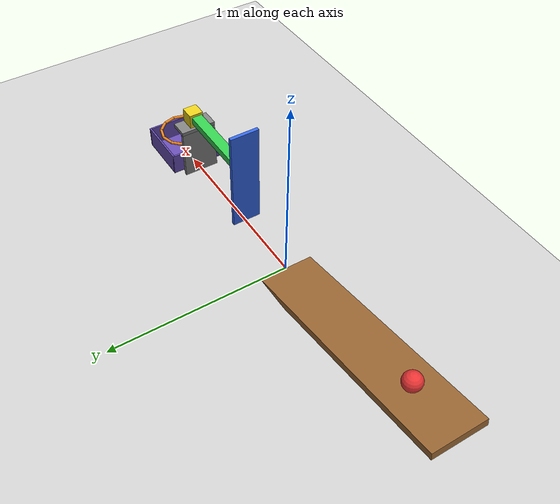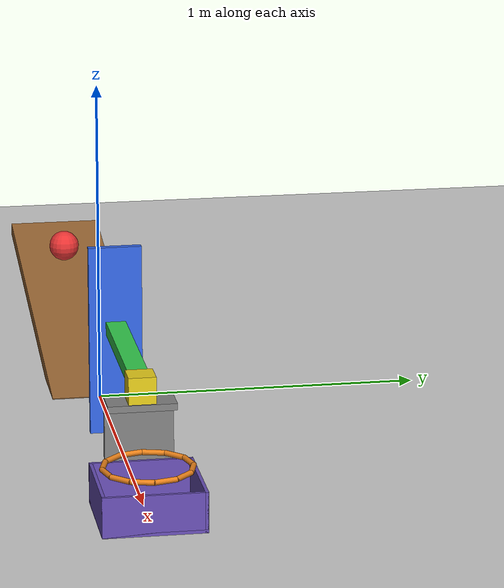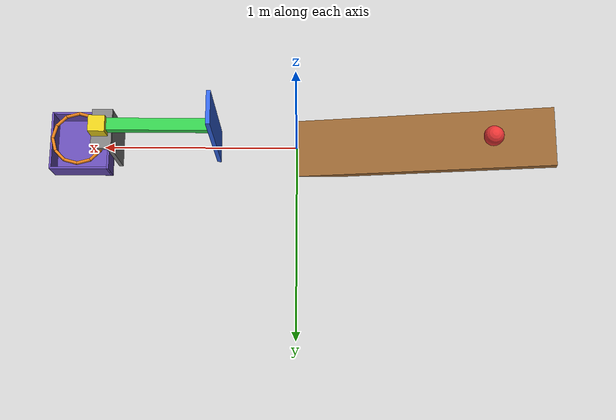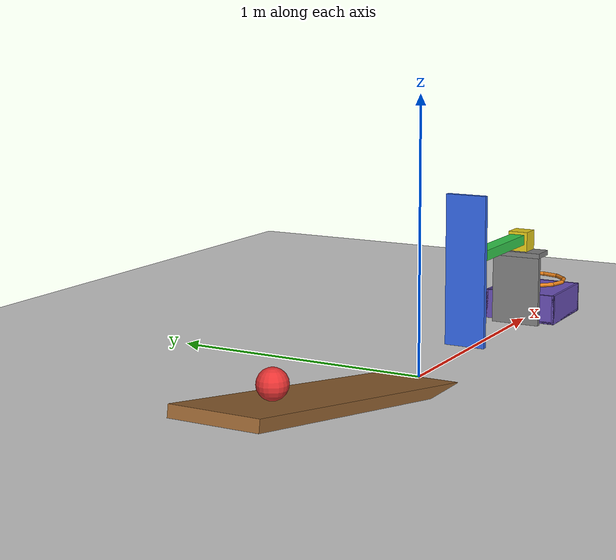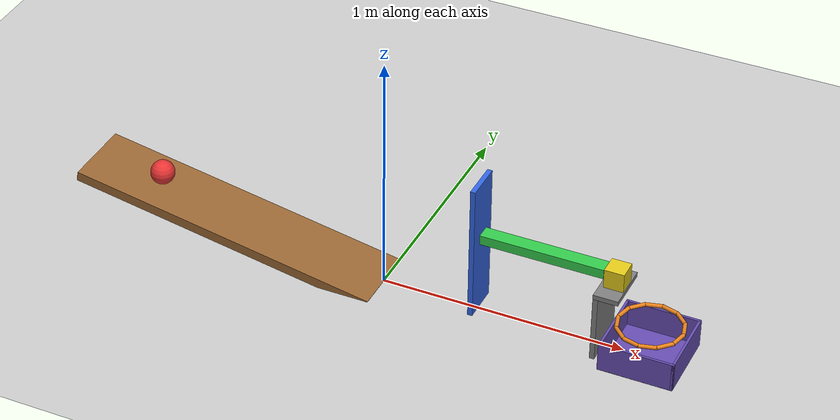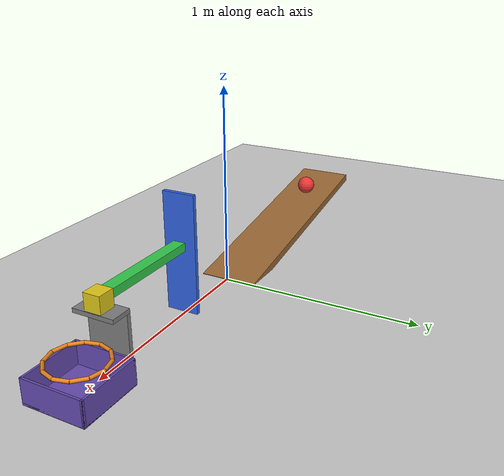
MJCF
<mujoco model="ramp_paddle_slider_block">
  <compiler angle="degree"/>
  <option timestep="0.002" gravity="0 0 -9.81"/>

  <worldbody>
    <light name="sun" pos="0.5 -1 3" dir="0 0.3 -1" diffuse="0.9 0.9 0.9"/>
    <geom name="floor" type="plane" pos="0 0 0" size="5 5 0.1" rgba="0.8 0.8 0.8 1"/>

    <!-- trigger ball: starts 1 m along the 10 degree ramp, at rest -->
    <body name="ball" pos="-0.9760 0 0.2239">
      <freejoint name="ball_free"/>
      <geom name="ball_geom" type="sphere" size="0.05" mass="0.5" rgba="0.9 0.2 0.2 1"/>
    </body>

    <!-- ball ramp: 1.3 m long, 10 degrees, lower edge meets floor at x=0 -->
    <body name="ramp" pos="0 0 0">
      <geom name="ramp_surface" type="box" pos="-0.6436 0 0.0932" euler="0 10 0" size="0.65 0.15 0.02" rgba="0.6 0.4 0.2 1"/>
    </body>

    <!-- swinging paddle: pivot at top, hangs to z=0.02 -->
    <body name="paddle" pos="0.4 0 0.6">
      <joint name="paddle_hinge" type="hinge" axis="0 1 0" pos="0 0 0" damping="0.001"/>
      <geom name="paddle_geom" type="box" pos="0 0 -0.29" size="0.01 0.08 0.29" mass="0.4" rgba="0.2 0.4 0.9 1"/>
    </body>

    <!-- horizontal slider at z=0.35: rear face 2 mm in front of paddle, front face 5 mm behind block -->
    <body name="slider" pos="0.662 0 0.35">
      <joint name="slider_slide" type="slide" axis="1 0 0" range="0 0.10" limited="true"/>
      <geom name="slider_geom" type="box" size="0.25 0.03 0.02" mass="0.3" rgba="0.2 0.8 0.3 1"/>
    </body>

    <!-- payload block on the ledge -->
    <body name="block" pos="0.957 0 0.3405">
      <freejoint name="block_free"/>
      <geom name="block_geom" type="box" size="0.04 0.04 0.04" mass="0.15" friction="0.05 0.005 0.0001" rgba="0.9 0.8 0.1 1"/>
    </body>

    <!-- ledge: low-friction shelf (top z=0.30, edge at x=1.00) on a rear post -->
    <body name="ledge" pos="0 0 0">
      <geom name="ledge_shelf" type="box" pos="0.95 0 0.29" size="0.05 0.1 0.01" friction="0.05 0.005 0.0001" rgba="0.5 0.5 0.5 1"/>
      <geom name="ledge_post" type="box" pos="0.91 0 0.14" size="0.01 0.1 0.14" rgba="0.5 0.5 0.5 1"/>
    </body>

    <!-- horizontal hoop: ring radius 0.13 at z=0.15 centred on x=1.10 -->
    <body name="hoop" pos="0 0 0">
      <geom name="hoop_s0" type="capsule" fromto="1.2300 0.0000 0.15 1.2126 0.0650 0.15" size="0.008" rgba="0.9 0.5 0.1 1"/>
      <geom name="hoop_s1" type="capsule" fromto="1.2126 0.0650 0.15 1.1650 0.1126 0.15" size="0.008" rgba="0.9 0.5 0.1 1"/>
      <geom name="hoop_s2" type="capsule" fromto="1.1650 0.1126 0.15 1.1000 0.1300 0.15" size="0.008" rgba="0.9 0.5 0.1 1"/>
      <geom name="hoop_s3" type="capsule" fromto="1.1000 0.1300 0.15 1.0350 0.1126 0.15" size="0.008" rgba="0.9 0.5 0.1 1"/>
      <geom name="hoop_s4" type="capsule" fromto="1.0350 0.1126 0.15 0.9874 0.0650 0.15" size="0.008" rgba="0.9 0.5 0.1 1"/>
      <geom name="hoop_s5" type="capsule" fromto="0.9874 0.0650 0.15 0.9700 0.0000 0.15" size="0.008" rgba="0.9 0.5 0.1 1"/>
      <geom name="hoop_s6" type="capsule" fromto="0.9700 0.0000 0.15 0.9874 -0.0650 0.15" size="0.008" rgba="0.9 0.5 0.1 1"/>
      <geom name="hoop_s7" type="capsule" fromto="0.9874 -0.0650 0.15 1.0350 -0.1126 0.15" size="0.008" rgba="0.9 0.5 0.1 1"/>
      <geom name="hoop_s8" type="capsule" fromto="1.0350 -0.1126 0.15 1.1000 -0.1300 0.15" size="0.008" rgba="0.9 0.5 0.1 1"/>
      <geom name="hoop_s9" type="capsule" fromto="1.1000 -0.1300 0.15 1.1650 -0.1126 0.15" size="0.008" rgba="0.9 0.5 0.1 1"/>
      <geom name="hoop_s10" type="capsule" fromto="1.1650 -0.1126 0.15 1.2126 -0.0650 0.15" size="0.008" rgba="0.9 0.5 0.1 1"/>
      <geom name="hoop_s11" type="capsule" fromto="1.2126 -0.0650 0.15 1.2300 0.0000 0.15" size="0.008" rgba="0.9 0.5 0.1 1"/>
    </body>

    <!-- catching box: inner 0.28 x 0.28, walls 0.12 high, centred under hoop -->
    <body name="box" pos="1.10 0 0">
      <geom name="box_bottom" type="box" pos="0 0 0.005" size="0.15 0.15 0.005" rgba="0.4 0.3 0.7 1"/>
      <geom name="box_wall_back" type="box" pos="-0.145 0 0.06" size="0.005 0.15 0.06" rgba="0.4 0.3 0.7 1"/>
      <geom name="box_wall_front" type="box" pos="0.145 0 0.06" size="0.005 0.15 0.06" rgba="0.4 0.3 0.7 1"/>
      <geom name="box_wall_left" type="box" pos="0 0.145 0.06" size="0.15 0.005 0.06" rgba="0.4 0.3 0.7 1"/>
      <geom name="box_wall_right" type="box" pos="0 -0.145 0.06" size="0.15 0.005 0.06" rgba="0.4 0.3 0.7 1"/>
    </body>
  </worldbody>

  <keyframe>
    <key name="start" qpos="-0.9760 0 0.2239 1 0 0 0  0  0  0.957 0 0.3405 1 0 0 0" qvel="0 0 0 0 0 0  0  0  0 0 0 0 0 0"/>
  </keyframe>
</mujoco>
